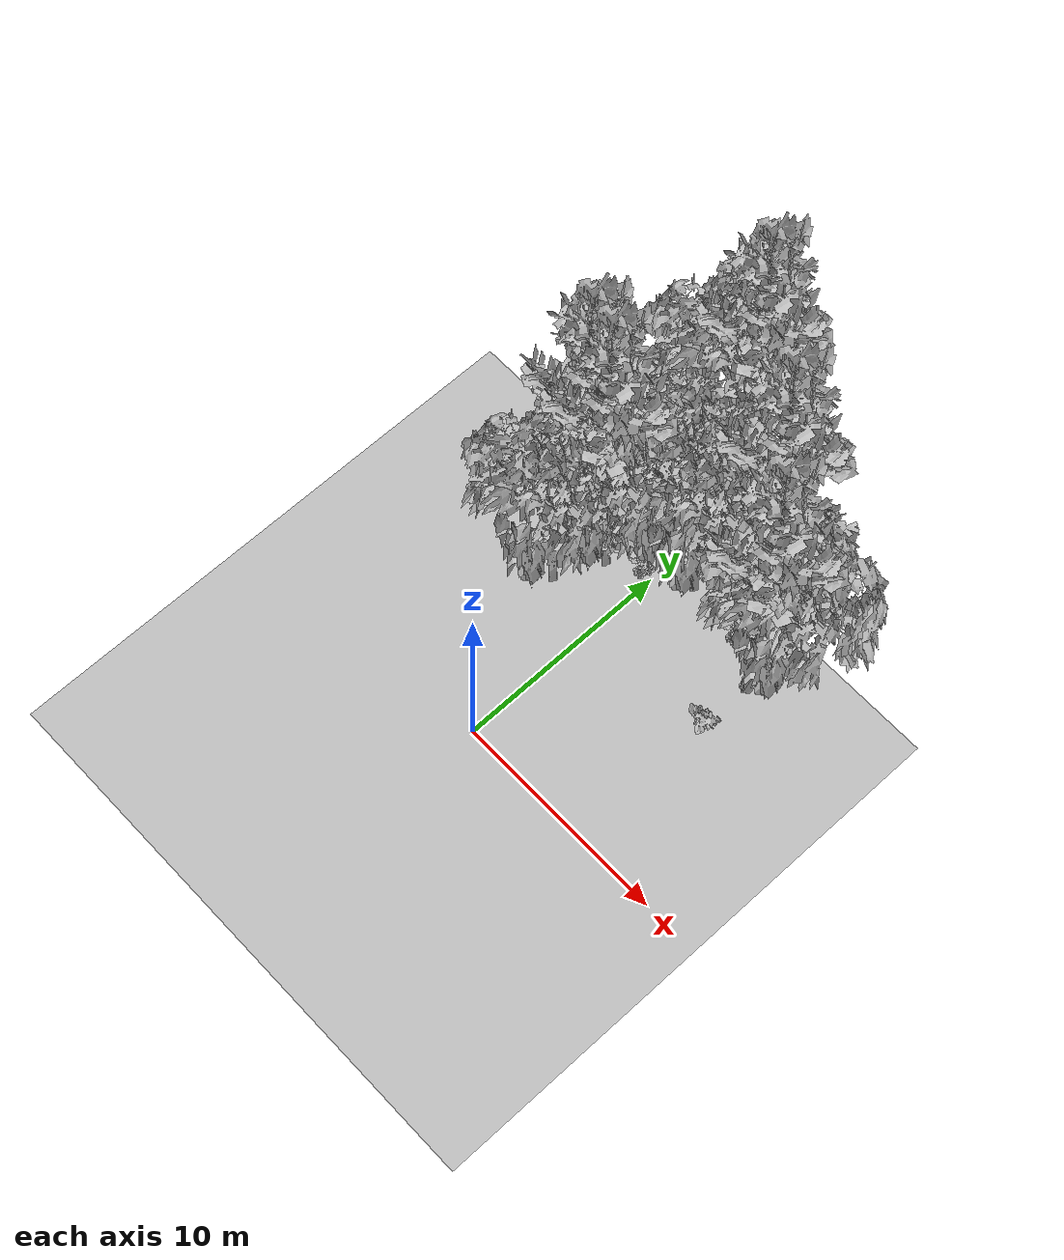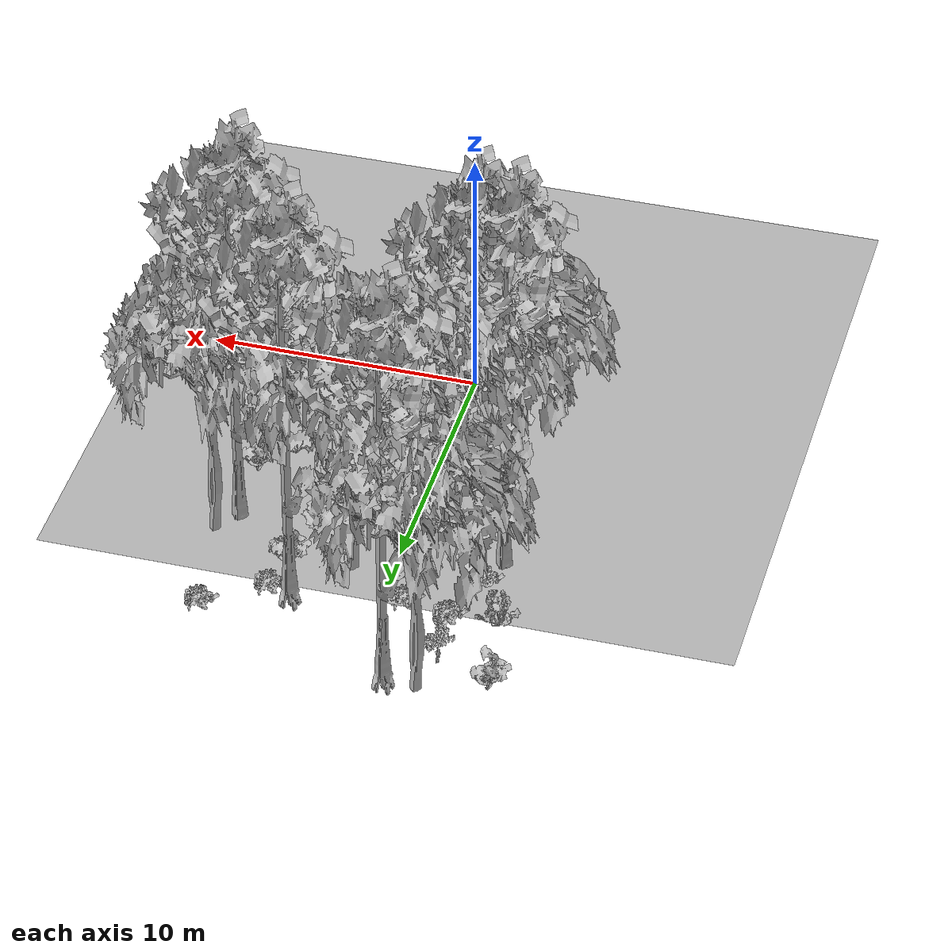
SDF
<sdf version="1.7">
 <world name="default">
  <model name="ground_plane">
   <static>1</static>
   <link name="link">
    <collision name="collision">
     <pose>-50 0 0 0 -0 0</pose>
     <geometry><plane><normal>0 0 1</normal><size>80 80</size></plane></geometry>
     <surface><contact><ode><min_depth>0.01</min_depth><max_vel>0</max_vel></ode></contact></surface>
    </collision>
    <visual name="grass">
     <cast_shadows>0</cast_shadows>
     <geometry>
      <mesh>
       <scale>0.46714285714285714 0.46714285714285714 0.1</scale>
       <uri>file://grass_plane/meshes/grass_plane.dae</uri>
      </mesh>
     </geometry>
    </visual>
   </link>
  </model>
  <model name="Tree 52">
   <static>1</static>
   <pose>-1.1473043373526224 16.160716399269937 0 1.57079 -0 0</pose>
   <link name="link">
    <collision name="collision">
     <geometry><mesh><scale>3.5 5 3.5</scale><uri>model://tree_9/meshes/tree_9.obj</uri></mesh></geometry>
    </collision>
    <visual name="visual">
     <geometry><mesh><scale>3.5 5 3.5</scale><uri>model://tree_9/meshes/tree_9.obj</uri></mesh></geometry>
    </visual>
   </link>
  </model>
  <model name="Tree 96">
   <static>1</static>
   <pose>-2.918369203299015 7.052020028340316 0 1.57079 -0 0</pose>
   <link name="link">
    <collision name="collision">
     <geometry><mesh><scale>3.5 5 3.5</scale><uri>model://tree_2/meshes/tree_2.obj</uri></mesh></geometry>
    </collision>
    <visual name="visual">
     <geometry><mesh><scale>3.5 5 3.5</scale><uri>model://tree_2/meshes/tree_2.obj</uri></mesh></geometry>
    </visual>
   </link>
  </model>
  <model name="Tree 115">
   <static>1</static>
   <pose>-3.656797527603544 9.563474269136243 0 1.57079 -0 0</pose>
   <link name="link">
    <collision name="collision">
     <geometry><mesh><scale>3.5 5 3.5</scale><uri>model://tree_9/meshes/tree_9.obj</uri></mesh></geometry>
    </collision>
    <visual name="visual">
     <geometry><mesh><scale>3.5 5 3.5</scale><uri>model://tree_9/meshes/tree_9.obj</uri></mesh></geometry>
    </visual>
   </link>
  </model>
  <model name="Tree 168">
   <static>1</static>
   <pose>-2.3729757104682605 9.310940024707449 0 1.57079 -0 0</pose>
   <link name="link">
    <collision name="collision">
     <geometry><mesh><scale>3.5 5 3.5</scale><uri>model://tree_9/meshes/tree_9.obj</uri></mesh></geometry>
    </collision>
    <visual name="visual">
     <geometry><mesh><scale>3.5 5 3.5</scale><uri>model://tree_9/meshes/tree_9.obj</uri></mesh></geometry>
    </visual>
   </link>
  </model>
  <model name="Tree 186">
   <static>1</static>
   <pose>-0.45369105675530363 11.029560940018996 0 1.57079 -0 0</pose>
   <link name="link">
    <collision name="collision">
     <geometry><mesh><scale>3.5 5 3.5</scale><uri>model://tree_2/meshes/tree_2.obj</uri></mesh></geometry>
    </collision>
    <visual name="visual">
     <geometry><mesh><scale>3.5 5 3.5</scale><uri>model://tree_2/meshes/tree_2.obj</uri></mesh></geometry>
    </visual>
   </link>
  </model>
  <model name="Tree 251">
   <static>1</static>
   <pose>6.094182122008078 9.445052820983136 0 1.57079 -0 0</pose>
   <link name="link">
    <collision name="collision">
     <geometry><mesh><scale>3.5 5 3.5</scale><uri>model://tree_9/meshes/tree_9.obj</uri></mesh></geometry>
    </collision>
    <visual name="visual">
     <geometry><mesh><scale>3.5 5 3.5</scale><uri>model://tree_9/meshes/tree_9.obj</uri></mesh></geometry>
    </visual>
   </link>
  </model>
  <model name="Tree 301">
   <static>1</static>
   <pose>-1.9751233530433723 9.17514524628045 0 1.57079 -0 0</pose>
   <link name="link">
    <collision name="collision">
     <geometry><mesh><scale>3.5 5 3.5</scale><uri>model://tree_2/meshes/tree_2.obj</uri></mesh></geometry>
    </collision>
    <visual name="visual">
     <geometry><mesh><scale>3.5 5 3.5</scale><uri>model://tree_2/meshes/tree_2.obj</uri></mesh></geometry>
    </visual>
   </link>
  </model>
  <model name="Tree 421">
   <static>1</static>
   <pose>6.632486578985926 10.279405543015685 0 1.57079 -0 0</pose>
   <link name="link">
    <collision name="collision">
     <geometry><mesh><scale>3.5 5 3.5</scale><uri>model://tree_2/meshes/tree_2.obj</uri></mesh></geometry>
    </collision>
    <visual name="visual">
     <geometry><mesh><scale>3.5 5 3.5</scale><uri>model://tree_2/meshes/tree_2.obj</uri></mesh></geometry>
    </visual>
   </link>
  </model>
  <model name="Tree 428">
   <static>1</static>
   <pose>-2.5174491892590964 16.538070875240095 0 1.57079 -0 0</pose>
   <link name="link">
    <collision name="collision">
     <geometry><mesh><scale>3.5 5 3.5</scale><uri>model://tree_2/meshes/tree_2.obj</uri></mesh></geometry>
    </collision>
    <visual name="visual">
     <geometry><mesh><scale>3.5 5 3.5</scale><uri>model://tree_2/meshes/tree_2.obj</uri></mesh></geometry>
    </visual>
   </link>
  </model>
  <model name="Tree 503">
   <static>1</static>
   <pose>1.3264211553224996 11.044995121081968 0 1.57079 -0 0</pose>
   <link name="link">
    <collision name="collision">
     <geometry><mesh><scale>3.5 5 3.5</scale><uri>model://tree_2/meshes/tree_2.obj</uri></mesh></geometry>
    </collision>
    <visual name="visual">
     <geometry><mesh><scale>3.5 5 3.5</scale><uri>model://tree_2/meshes/tree_2.obj</uri></mesh></geometry>
    </visual>
   </link>
  </model>
  <model name="Tree 551">
   <static>1</static>
   <pose>3.195157532592951 12.854288804063863 0 1.57079 -0 0</pose>
   <link name="link">
    <collision name="collision">
     <geometry><mesh><scale>3.5 5 3.5</scale><uri>model://tree_9/meshes/tree_9.obj</uri></mesh></geometry>
    </collision>
    <visual name="visual">
     <geometry><mesh><scale>3.5 5 3.5</scale><uri>model://tree_9/meshes/tree_9.obj</uri></mesh></geometry>
    </visual>
   </link>
  </model>
  <model name="Bush 37">
   <static>1</static>
   <pose>-0.8237072476056326 12.170820065415185 0 1.57079 -0 0</pose>
   <link name="link">
    <collision name="collision">
     <geometry><mesh><scale>2 2 2</scale><uri>model://bush_2/meshes/bush_2.obj</uri></mesh></geometry>
     <surface><contact><collide_without_contact>false</collide_without_contact></contact></surface>
    </collision>
    <visual name="visual">
     <geometry><mesh><scale>2 2 2</scale><uri>model://bush_2/meshes/bush_2.obj</uri></mesh></geometry>
    </visual>
   </link>
  </model>
  <model name="Bush 145">
   <static>1</static>
   <pose>-2.4792292128942606 12.569039461114393 0 1.57079 -0 0</pose>
   <link name="link">
    <collision name="collision">
     <geometry><mesh><scale>2 2 2</scale><uri>model://bush_2/meshes/bush_2.obj</uri></mesh></geometry>
     <surface><contact><collide_without_contact>false</collide_without_contact></contact></surface>
    </collision>
    <visual name="visual">
     <geometry><mesh><scale>2 2 2</scale><uri>model://bush_2/meshes/bush_2.obj</uri></mesh></geometry>
    </visual>
   </link>
  </model>
  <model name="Bush 179">
   <static>1</static>
   <pose>3.9747365881008463 12.63625190989687 0 1.57079 -0 0</pose>
   <link name="link">
    <collision name="collision">
     <geometry><mesh><scale>2 2 2</scale><uri>model://bush_2/meshes/bush_2.obj</uri></mesh></geometry>
     <surface><contact><collide_without_contact>false</collide_without_contact></contact></surface>
    </collision>
    <visual name="visual">
     <geometry><mesh><scale>2 2 2</scale><uri>model://bush_2/meshes/bush_2.obj</uri></mesh></geometry>
    </visual>
   </link>
  </model>
  <model name="Bush 305">
   <static>1</static>
   <pose>-0.7037252936124929 10.12670555073531 0 1.57079 -0 0</pose>
   <link name="link">
    <collision name="collision">
     <geometry><mesh><scale>2 2 2</scale><uri>model://bush_2/meshes/bush_2.obj</uri></mesh></geometry>
     <surface><contact><collide_without_contact>false</collide_without_contact></contact></surface>
    </collision>
    <visual name="visual">
     <geometry><mesh><scale>2 2 2</scale><uri>model://bush_2/meshes/bush_2.obj</uri></mesh></geometry>
    </visual>
   </link>
  </model>
  <model name="Bush 325">
   <static>1</static>
   <pose>3.6150228295183027 11.600940615992045 0 1.57079 -0 0</pose>
   <link name="link">
    <collision name="collision">
     <geometry><mesh><scale>2 2 2</scale><uri>model://bush_0/meshes/bush_0.obj</uri></mesh></geometry>
     <surface><contact><collide_without_contact>false</collide_without_contact></contact></surface>
    </collision>
    <visual name="visual">
     <geometry><mesh><scale>2 2 2</scale><uri>model://bush_0/meshes/bush_0.obj</uri></mesh></geometry>
    </visual>
   </link>
  </model>
  <model name="Bush 375">
   <static>1</static>
   <pose>-3.233435860901544 10.455159046033309 0 1.57079 -0 0</pose>
   <link name="link">
    <collision name="collision">
     <geometry><mesh><scale>2 2 2</scale><uri>model://bush_2/meshes/bush_2.obj</uri></mesh></geometry>
     <surface><contact><collide_without_contact>false</collide_without_contact></contact></surface>
    </collision>
    <visual name="visual">
     <geometry><mesh><scale>2 2 2</scale><uri>model://bush_2/meshes/bush_2.obj</uri></mesh></geometry>
    </visual>
   </link>
  </model>
  <model name="Bush 444">
   <static>1</static>
   <pose>-4.783622010571406 15.996571263448175 0 1.57079 -0 0</pose>
   <link name="link">
    <collision name="collision">
     <geometry><mesh><scale>2 2 2</scale><uri>model://bush_0/meshes/bush_0.obj</uri></mesh></geometry>
     <surface><contact><collide_without_contact>false</collide_without_contact></contact></surface>
    </collision>
    <visual name="visual">
     <geometry><mesh><scale>2 2 2</scale><uri>model://bush_0/meshes/bush_0.obj</uri></mesh></geometry>
    </visual>
   </link>
  </model>
  <model name="Bush 476">
   <static>1</static>
   <pose>4.01775498357938 10.787091770491557 0 1.57079 -0 0</pose>
   <link name="link">
    <collision name="collision">
     <geometry><mesh><scale>2 2 2</scale><uri>model://bush_2/meshes/bush_2.obj</uri></mesh></geometry>
     <surface><contact><collide_without_contact>false</collide_without_contact></contact></surface>
    </collision>
    <visual name="visual">
     <geometry><mesh><scale>2 2 2</scale><uri>model://bush_2/meshes/bush_2.obj</uri></mesh></geometry>
    </visual>
   </link>
  </model>
  <model name="Bush 518">
   <static>1</static>
   <pose>6.201662743026958 6.890598253466315 0 1.57079 -0 0</pose>
   <link name="link">
    <collision name="collision">
     <geometry><mesh><scale>2 2 2</scale><uri>model://bush_0/meshes/bush_0.obj</uri></mesh></geometry>
     <surface><contact><collide_without_contact>false</collide_without_contact></contact></surface>
    </collision>
    <visual name="visual">
     <geometry><mesh><scale>2 2 2</scale><uri>model://bush_0/meshes/bush_0.obj</uri></mesh></geometry>
    </visual>
   </link>
  </model>
  <model name="Bush 528">
   <static>1</static>
   <pose>-2.7692659179764547 15.131930673805513 0 1.57079 -0 0</pose>
   <link name="link">
    <collision name="collision">
     <geometry><mesh><scale>2 2 2</scale><uri>model://bush_5/meshes/bush_5.obj</uri></mesh></geometry>
     <surface><contact><collide_without_contact>false</collide_without_contact></contact></surface>
    </collision>
    <visual name="visual">
     <geometry><mesh><scale>2 2 2</scale><uri>model://bush_5/meshes/bush_5.obj</uri></mesh></geometry>
    </visual>
   </link>
  </model>
  <model name="Bush 549">
   <static>1</static>
   <pose>6.072087585633412 14.052837788986068 0 1.57079 -0 0</pose>
   <link name="link">
    <collision name="collision">
     <geometry><mesh><scale>2 2 2</scale><uri>model://bush_2/meshes/bush_2.obj</uri></mesh></geometry>
     <surface><contact><collide_without_contact>false</collide_without_contact></contact></surface>
    </collision>
    <visual name="visual">
     <geometry><mesh><scale>2 2 2</scale><uri>model://bush_2/meshes/bush_2.obj</uri></mesh></geometry>
    </visual>
   </link>
  </model>
  <model name="Bush 581">
   <static>1</static>
   <pose>-4.304620369571538 12.696281929864163 0 1.57079 -0 0</pose>
   <link name="link">
    <collision name="collision">
     <geometry><mesh><scale>2 2 2</scale><uri>model://bush_4/meshes/bush_4.obj</uri></mesh></geometry>
     <surface><contact><collide_without_contact>false</collide_without_contact></contact></surface>
    </collision>
    <visual name="visual">
     <geometry><mesh><scale>2 2 2</scale><uri>model://bush_4/meshes/bush_4.obj</uri></mesh></geometry>
    </visual>
   </link>
  </model>
 </world>
</sdf>
